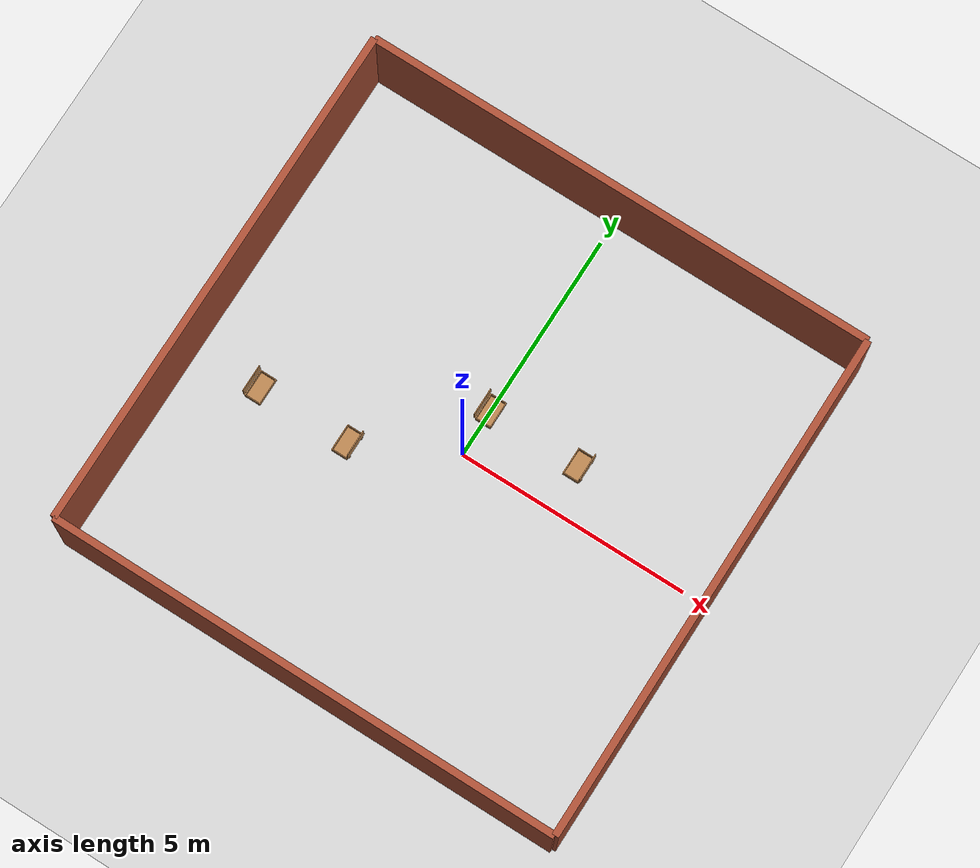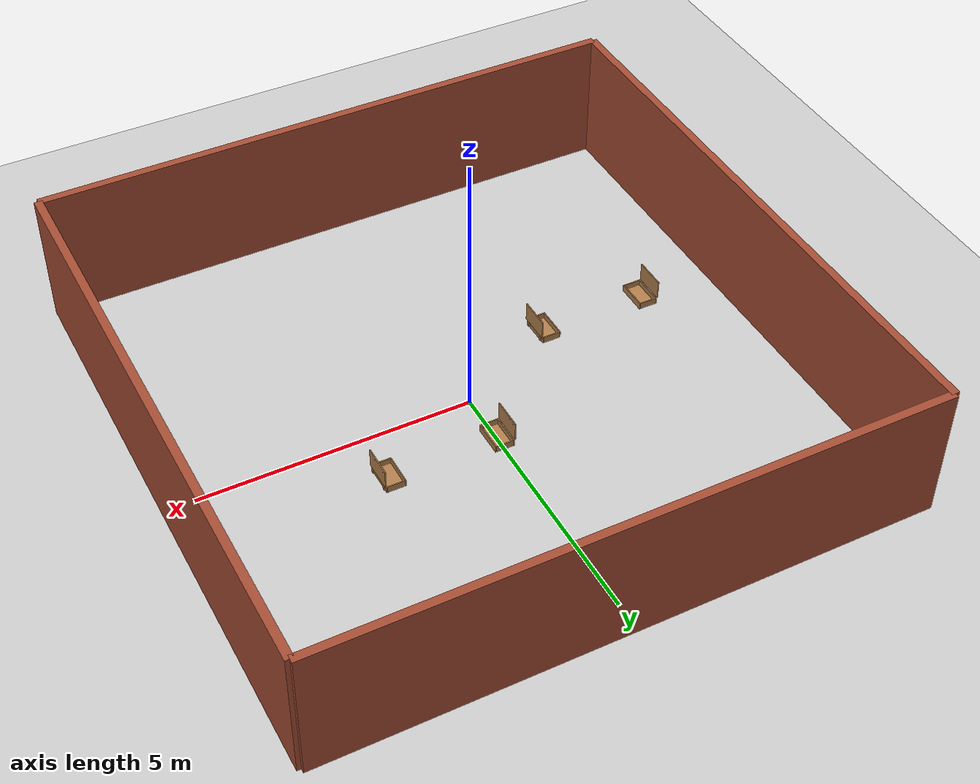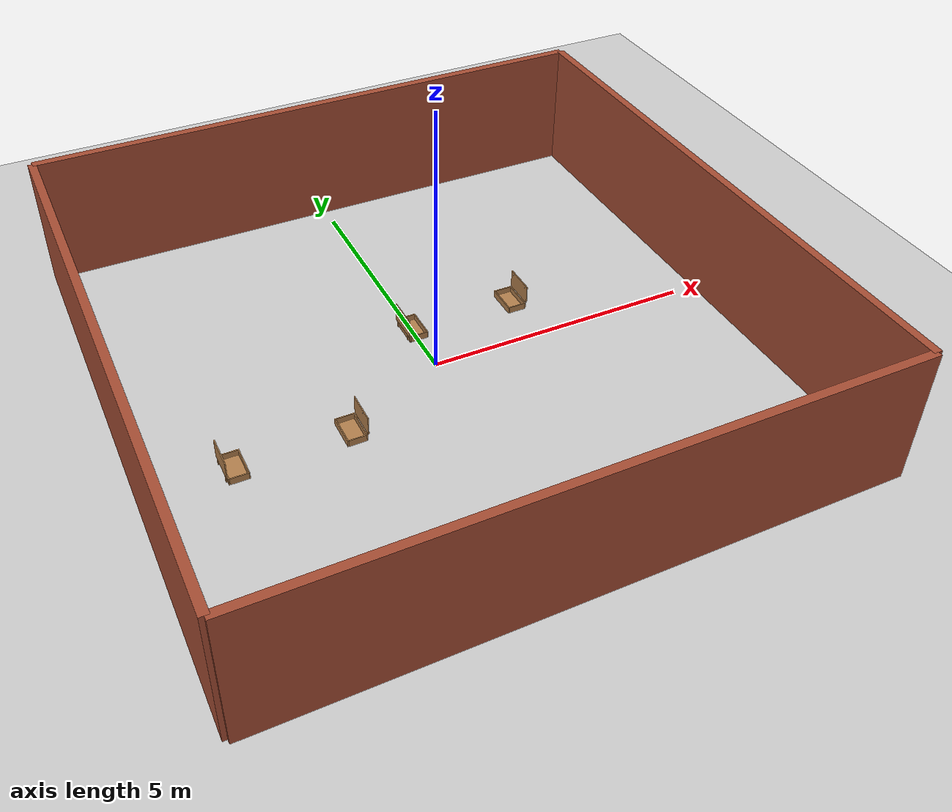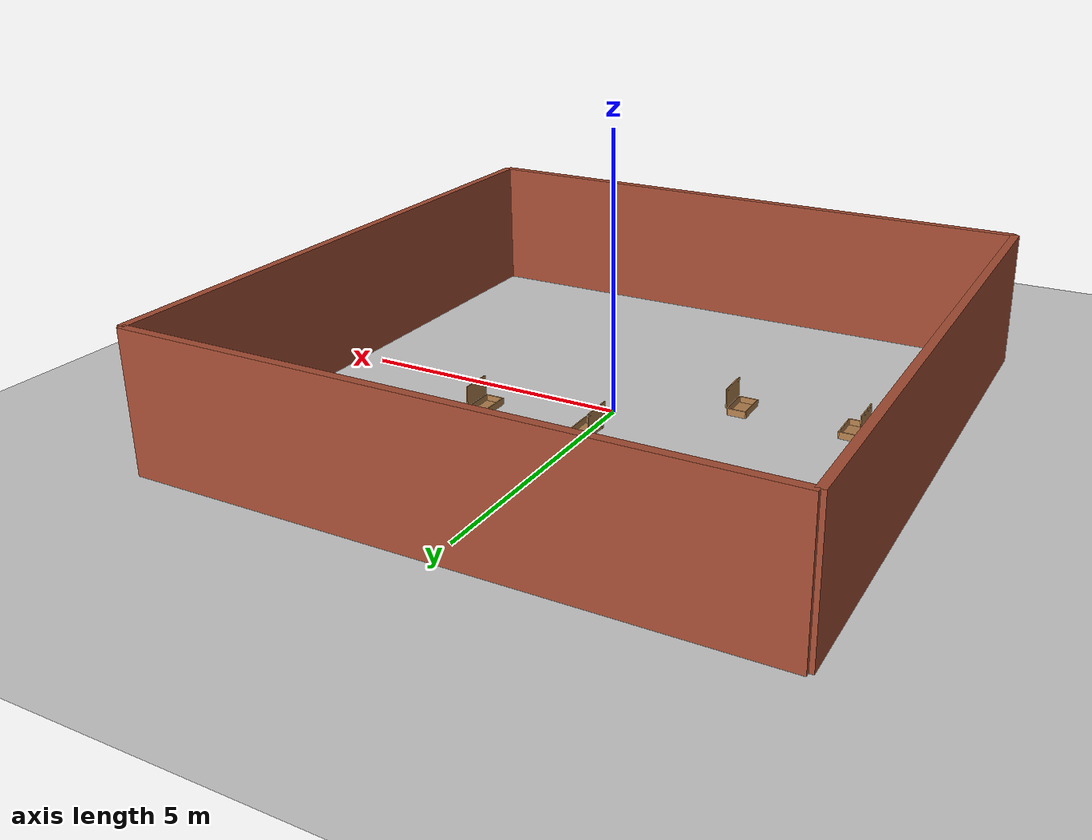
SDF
<sdf version="1.6">
 <world name="default">
  <light name="sun" type="directional">
   <pose>0 0 10 0 -0 0</pose>
   <diffuse>0.8 0.8 0.8 1</diffuse>
   <specular>0.1 0.1 0.1 1</specular>
   <attenuation>
    <range>1000</range>
    <constant>0.9</constant>
    <linear>0.01</linear>
    <quadratic>0.001</quadratic>
   </attenuation>
   <direction>-0.5 0.5 -1</direction>
  </light>
  <include><uri>model://wooden_case</uri><pose>-0.2 1 0.1 0 -1.5708 3.14159</pose></include>
  <include><uri>model://wooden_case</uri><pose>2.2 1 0.1 0 -1.5708 0</pose></include>
  <include><uri>model://wooden_case</uri><pose>-4.2 -1 0.1 0 -1.5708 3.14159</pose></include>
  <include><uri>model://wooden_case</uri><pose>-1.8 -1 0.1 0 -1.5708 0</pose></include>
  <model name="ground_plane">
   <static>1</static>
   <link name="link">
    <collision name="collision">
     <geometry><plane><normal>0 0 1</normal><size>100 100</size></plane></geometry>
     <surface><friction><ode><mu>100</mu><mu2>50</mu2></ode></friction></surface>
    </collision>
    <visual name="visual">
     <cast_shadows>0</cast_shadows>
     <geometry><plane><normal>0 0 1</normal><size>100 100</size></plane></geometry>
     <material>
      <script><uri>file://media/materials/scripts/gazebo.material</uri><name>Gazebo/Grey</name></script>
     </material>
    </visual>
   </link>
  </model>
  <gravity>0 0 -9.8</gravity>
  <magnetic_field>6e-06 2.3e-05 -4.2e-05</magnetic_field>
  <atmosphere type="adiabatic"/>
  <physics name="default_physics" default="0" type="ode">
   <max_step_size>0.001</max_step_size>
   <real_time_factor>1</real_time_factor>
   <real_time_update_rate>1000</real_time_update_rate>
  </physics>
  <scene><ambient>0.4 0.4 0.4 1</ambient><background>0.7 0.7 0.7 1</background><shadows>1</shadows></scene>
  <spherical_coordinates>
   <surface_model>EARTH_WGS84</surface_model>
   <latitude_deg>0</latitude_deg>
   <longitude_deg>0</longitude_deg>
   <elevation>0</elevation>
   <heading_deg>0</heading_deg>
  </spherical_coordinates>
  <model name="empty_house">
   <link name="Wall_0">
    <collision name="Wall_0_Collision">
     <geometry><box><size>11 0.15 2.5</size></box></geometry>
     <pose>0 3 1.25 0 -0 0</pose>
    </collision>
    <visual name="Wall_0_Visual">
     <pose>0 3 1.25 0 -0 0</pose>
     <geometry><box><size>11 0.15 2.5</size></box></geometry>
     <material>
      <script><uri>file://media/materials/scripts/gazebo.material</uri><name>Gazebo/Bricks</name></script>
      <ambient>1 1 1 1</ambient>
     </material>
    </visual>
    <pose>0 2.5 0 0 -0 0</pose>
   </link>
   <link name="Wall_1">
    <collision name="Wall_1_Collision">
     <geometry><box><size>11 0.15 2.5</size></box></geometry>
     <pose>0 3 1.25 0 -0 0</pose>
    </collision>
    <visual name="Wall_1_Visual">
     <pose>0 3 1.25 0 -0 0</pose>
     <geometry><box><size>11 0.15 2.5</size></box></geometry>
     <material>
      <script><uri>file://media/materials/scripts/gazebo.material</uri><name>Gazebo/Bricks</name></script>
      <ambient>1 1 1 1</ambient>
     </material>
    </visual>
    <pose>2.5 0 0 0 0 -1.5708</pose>
   </link>
   <link name="Wall_2">
    <collision name="Wall_2_Collision">
     <geometry><box><size>11 0.15 2.5</size></box></geometry>
     <pose>0 3 1.25 0 -0 0</pose>
    </collision>
    <visual name="Wall_2_Visual">
     <pose>0 3 1.25 0 -0 0</pose>
     <geometry><box><size>11 0.15 2.5</size></box></geometry>
     <material>
      <script><uri>file://media/materials/scripts/gazebo.material</uri><name>Gazebo/Bricks</name></script>
      <ambient>1 1 1 1</ambient>
     </material>
    </visual>
    <pose>0 -2.5 0 0 -0 3.14159</pose>
   </link>
   <link name="Wall_3">
    <collision name="Wall_3_Collision">
     <geometry><box><size>11 0.15 2.5</size></box></geometry>
     <pose>0 3 1.25 0 -0 0</pose>
    </collision>
    <visual name="Wall_3_Visual">
     <pose>0 3 1.25 0 -0 0</pose>
     <geometry><box><size>11 0.15 2.5</size></box></geometry>
     <material>
      <script><uri>file://media/materials/scripts/gazebo.material</uri><name>Gazebo/Bricks</name></script>
      <ambient>1 1 1 1</ambient>
     </material>
    </visual>
    <pose>-2.5 0 0 0 -0 1.5708</pose>
   </link>
   <static>1</static>
  </model>
 </world>
</sdf>

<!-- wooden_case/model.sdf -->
<sdf version="1.5">
  <model name="wooden_case">
    <link name="base">

      <pose>0 0 0.024  0 0 0</pose>
      <inertial>
        <pose>-0.02218446808213116 0.0 0.17159249678128843  0 0 0</pose>
        <mass>3.9626366887499986</mass>
        <inertia>
          <ixx>0.2135364168029657</ixx>
          <ixy>0.0</ixy>
          <ixz>0.0007793770806417083</ixz>
          <iyy>0.07089428398599372</iyy>
          <iyz>0.0</iyz>
          <izz>0.15460392299497075</izz>
        </inertia>
      </inertial>

      <collision name="collision_back">
        <pose>-0.053975 0 0.17779999999999999  0 0 0</pose>
        <geometry>
          <box>
            <size>0.019049999999999997 0.5460999999999999 0.3175</size>
          </box>
        </geometry>
        <surface>
          <contact>

            <poissons_ratio>0.347</poissons_ratio>
            <elastic_modulus>8.8e+09</elastic_modulus>
            <ode>
              <kp>100000</kp>
              <kd>100</kd>
              <max_vel>100.0</max_vel>
              <min_depth>0.001</min_depth>
            </ode>
          </contact>
          <friction>
            <torsional>
              <coefficient>1.0</coefficient>
              <use_patch_radius>0</use_patch_radius>
              <surface_radius>0.01</surface_radius>
            </torsional>
          </friction>
        </surface>
      </collision>
      <visual name="visual_back">
        <pose>-0.053975 0 0.17779999999999999  0 0 0</pose>
        <geometry>
          <box>
            <size>0.019049999999999997 0.5460999999999999 0.3175</size>
          </box>
        </geometry>
        <material>
          <script>
            <uri>model://media/materials/scripts/gazebo.material</uri>
            <name>Gazebo/Wood</name>
          </script>
        </material>
      </visual>

      <collision name="collision_bottom">
        <pose>0 0 0.009524999999999999  0 0 0</pose>
        <geometry>
          <box>
            <size>0.127 0.5841999999999999 0.019049999999999997</size>
          </box>
        </geometry>
        <surface>
          <contact>

            <poissons_ratio>0.347</poissons_ratio>
            <elastic_modulus>8.8e+09</elastic_modulus>
            <ode>
              <kp>100000</kp>
              <kd>100</kd>
              <max_vel>100.0</max_vel>
              <min_depth>0.001</min_depth>
            </ode>
          </contact>
          <friction>
            <torsional>
              <coefficient>1.0</coefficient>
              <use_patch_radius>0</use_patch_radius>
              <surface_radius>0.01</surface_radius>
            </torsional>
          </friction>
        </surface>
      </collision>
      <visual name="visual_bottom">
        <pose>0 0 0.009524999999999999  0 0 0</pose>
        <geometry>
          <box>
            <size>0.127 0.5841999999999999 0.019049999999999997</size>
          </box>
        </geometry>
        <material>
          <script>
            <uri>model://media/materials/scripts/gazebo.material</uri>
            <name>Gazebo/Wood</name>
          </script>
        </material>
      </visual>

      <collision name="collision_top">
        <pose>0 0 0.34607499999999997  0 0 0</pose>
        <geometry>
          <box>
            <size>0.127 0.5841999999999999 0.019049999999999997</size>
          </box>
        </geometry>
        <surface>
          <contact>

            <poissons_ratio>0.347</poissons_ratio>
            <elastic_modulus>8.8e+09</elastic_modulus>
            <ode>
              <kp>100000</kp>
              <kd>100</kd>
              <max_vel>100.0</max_vel>
              <min_depth>0.001</min_depth>
            </ode>
          </contact>
          <friction>
            <torsional>
              <coefficient>1.0</coefficient>
              <use_patch_radius>0</use_patch_radius>
              <surface_radius>0.01</surface_radius>
            </torsional>
          </friction>
        </surface>
      </collision>
      <visual name="visual_top">
        <pose>0 0 0.34607499999999997  0 0 0</pose>
        <geometry>
          <box>
            <size>0.127 0.5841999999999999 0.019049999999999997</size>
          </box>
        </geometry>
        <material>
          <script>
            <uri>model://media/materials/scripts/gazebo.material</uri>
            <name>Gazebo/Wood</name>
          </script>
        </material>
      </visual>

      <collision name="collision_left">
        <pose>0 -0.28257499999999997 0.17779999999999999  0 0 0</pose>
        <geometry>
          <box>
            <size>0.127 0.019049999999999997 0.3175</size>
          </box>
        </geometry>
        <surface>
          <contact>

            <poissons_ratio>0.347</poissons_ratio>
            <elastic_modulus>8.8e+09</elastic_modulus>
            <ode>
              <kp>100000</kp>
              <kd>100</kd>
              <max_vel>100.0</max_vel>
              <min_depth>0.001</min_depth>
            </ode>
          </contact>
          <friction>
            <torsional>
              <coefficient>1.0</coefficient>
              <use_patch_radius>0</use_patch_radius>
              <surface_radius>0.01</surface_radius>
            </torsional>
          </friction>
        </surface>
      </collision>
      <visual name="visual_left">
        <pose>0 -0.28257499999999997 0.17779999999999999  0 0 0</pose>
        <geometry>
          <box>
            <size>0.127 0.019049999999999997 0.3175</size>
          </box>
        </geometry>
        <material>
          <script>
            <uri>model://media/materials/scripts/gazebo.material</uri>
            <name>Gazebo/Wood</name>
          </script>
        </material>
      </visual>

      <collision name="collision_right">
        <pose>0 0.28257499999999997 0.17779999999999999  0 0 0</pose>
        <geometry>
          <box>
            <size>0.127 0.019049999999999997 0.3175</size>
          </box>
        </geometry>
        <surface>
          <contact>

            <poissons_ratio>0.347</poissons_ratio>
            <elastic_modulus>8.8e+09</elastic_modulus>
            <ode>
              <kp>100000</kp>
              <kd>100</kd>
              <max_vel>100.0</max_vel>
              <min_depth>0.001</min_depth>
            </ode>
          </contact>
          <friction>
            <torsional>
              <coefficient>1.0</coefficient>
              <use_patch_radius>0</use_patch_radius>
              <surface_radius>0.01</surface_radius>
            </torsional>
          </friction>
        </surface>
      </collision>
      <visual name="visual_right">
        <pose>0 0.28257499999999997 0.17779999999999999  0 0 0</pose>
        <geometry>
          <box>
            <size>0.127 0.019049999999999997 0.3175</size>
          </box>
        </geometry>
        <material>
          <script>
            <uri>model://media/materials/scripts/gazebo.material</uri>
            <name>Gazebo/Wood</name>
          </script>
        </material>
      </visual>

      <collision name="collision_block_left">
        <pose>0.009500000000000001 -0.21509999999999996 -0.012  0 0 0</pose>
        <geometry>
          <box>
            <size>0.108 0.05 0.024</size>
          </box>
        </geometry>
        <surface>
          <contact>

            <poissons_ratio>0.347</poissons_ratio>
            <elastic_modulus>8.8e+09</elastic_modulus>
            <ode>
              <kp>100000</kp>
              <kd>100</kd>
              <max_vel>100.0</max_vel>
              <min_depth>0.001</min_depth>
            </ode>
          </contact>
          <friction>
            <torsional>
              <coefficient>1.0</coefficient>
              <use_patch_radius>0</use_patch_radius>
              <surface_radius>0.01</surface_radius>
            </torsional>
          </friction>
        </surface>
      </collision>
      <visual name="visual_block_left">
        <pose>0.009500000000000001 -0.21509999999999996 -0.012  0 0 0</pose>
        <geometry>
          <box>
            <size>0.108 0.05 0.024</size>
          </box>
        </geometry>
        <material>
          <script>
            <uri>model://media/materials/scripts/gazebo.material</uri>
            <name>Gazebo/Wood</name>
          </script>
        </material>
      </visual>

      <collision name="collision_block_right">
        <pose>0.009500000000000001 0.21509999999999996 -0.012  0 0 0</pose>
        <geometry>
          <box>
            <size>0.108 0.05 0.024</size>
          </box>
        </geometry>
        <surface>
          <contact>

            <poissons_ratio>0.347</poissons_ratio>
            <elastic_modulus>8.8e+09</elastic_modulus>
            <ode>
              <kp>100000</kp>
              <kd>100</kd>
              <max_vel>100.0</max_vel>
              <min_depth>0.001</min_depth>
            </ode>
          </contact>
          <friction>
            <torsional>
              <coefficient>1.0</coefficient>
              <use_patch_radius>0</use_patch_radius>
              <surface_radius>0.01</surface_radius>
            </torsional>
          </friction>
        </surface>
      </collision>
      <visual name="visual_block_right">
        <pose>0.009500000000000001 0.21509999999999996 -0.012  0 0 0</pose>
        <geometry>
          <box>
            <size>0.108 0.05 0.024</size>
          </box>
        </geometry>
        <material>
          <script>
            <uri>model://media/materials/scripts/gazebo.material</uri>
            <name>Gazebo/Wood</name>
          </script>
        </material>
      </visual>

    </link>

    <link name="lid">

      <pose>0.24377499999999996 0 0.009524999999999999  0 0 0</pose>
      <inertial>
        <mass>1.9787379779999992</mass>
        <inertia>
          <ixx>0.05633673842708405</ixx>
          <ixy>0</ixy>
          <ixz>0</ixz>
          <iyy>0.020911016446734258</iyy>
          <iyz>0</iyz>
          <izz>0.07712807338064145</izz>
        </inertia>
      </inertial>
      <collision name="collision">
        <geometry>
          <box>
            <size>0.35559999999999997 0.5841999999999999 0.019049999999999997</size>
          </box>
        </geometry>
        <surface>
          <contact>

            <poissons_ratio>0.347</poissons_ratio>
            <elastic_modulus>8.8e+09</elastic_modulus>
            <ode>
              <kp>100000</kp>
              <kd>100</kd>
              <max_vel>100.0</max_vel>
              <min_depth>0.001</min_depth>
            </ode>
          </contact>
          <friction>
            <torsional>
              <coefficient>1.0</coefficient>
              <use_patch_radius>0</use_patch_radius>
              <surface_radius>0.01</surface_radius>
            </torsional>
          </friction>
        </surface>
      </collision>
      <visual name="visual">
        <geometry>
          <box>
            <size>0.35559999999999997 0.5841999999999999 0.019049999999999997</size>
          </box>
        </geometry>
        <material>
          <script>
            <uri>model://media/materials/scripts/gazebo.material</uri>
            <name>Gazebo/Wood</name>
          </script>
        </material>
      </visual>

      <visual name="tee_nut_1">
        <pose>0.122 -0.216 0.0  0 0 0</pose>
        <geometry>
          <cylinder>
            <radius>0.00635</radius>
            <length>0.019240499999999997</length>
          </cylinder>
        </geometry>
        <material>
          <script>
            <uri>model://media/materials/scripts/gazebo.material</uri>
            <name>Gazebo/Grey</name>
          </script>
        </material>
      </visual>

      <visual name="tee_nut_2">
        <pose>0.122 -0.088 0.0  0 0 0</pose>
        <geometry>
          <cylinder>
            <radius>0.00635</radius>
            <length>0.019240499999999997</length>
          </cylinder>
        </geometry>
        <material>
          <script>
            <uri>model://media/materials/scripts/gazebo.material</uri>
            <name>Gazebo/Grey</name>
          </script>
        </material>
      </visual>

      <visual name="tee_nut_3">
        <pose>0.122 0.088 0.0  0 0 0</pose>
        <geometry>
          <cylinder>
            <radius>0.00635</radius>
            <length>0.019240499999999997</length>
          </cylinder>
        </geometry>
        <material>
          <script>
            <uri>model://media/materials/scripts/gazebo.material</uri>
            <name>Gazebo/Grey</name>
          </script>
        </material>
      </visual>

      <visual name="tee_nut_4">
        <pose>0.122 0.216 0.0  0 0 0</pose>
        <geometry>
          <cylinder>
            <radius>0.00635</radius>
            <length>0.019240499999999997</length>
          </cylinder>
        </geometry>
        <material>
          <script>
            <uri>model://media/materials/scripts/gazebo.material</uri>
            <name>Gazebo/Grey</name>
          </script>
        </material>
      </visual>

    </link>

    <joint name="lid_hinge" type="revolute">
      <pose>-0.17779999999999999 0 0.019049999999999997  0 0 0</pose>
      <parent>base</parent>
      <child>lid</child>
      <axis>
        <xyz>0 1 0</xyz>
        <limit>
          <upper>0.5235987755982988</upper>
          <lower>-1.5707963267948966</lower>
        </limit>
      </axis>
    </joint>

  </model>
</sdf>
